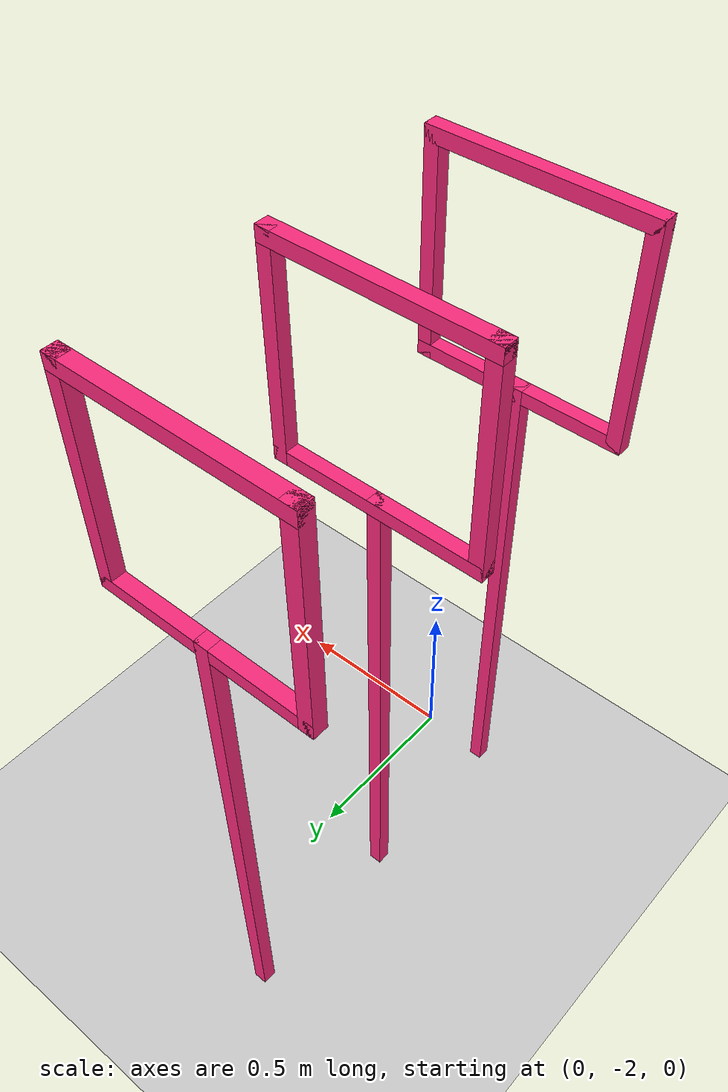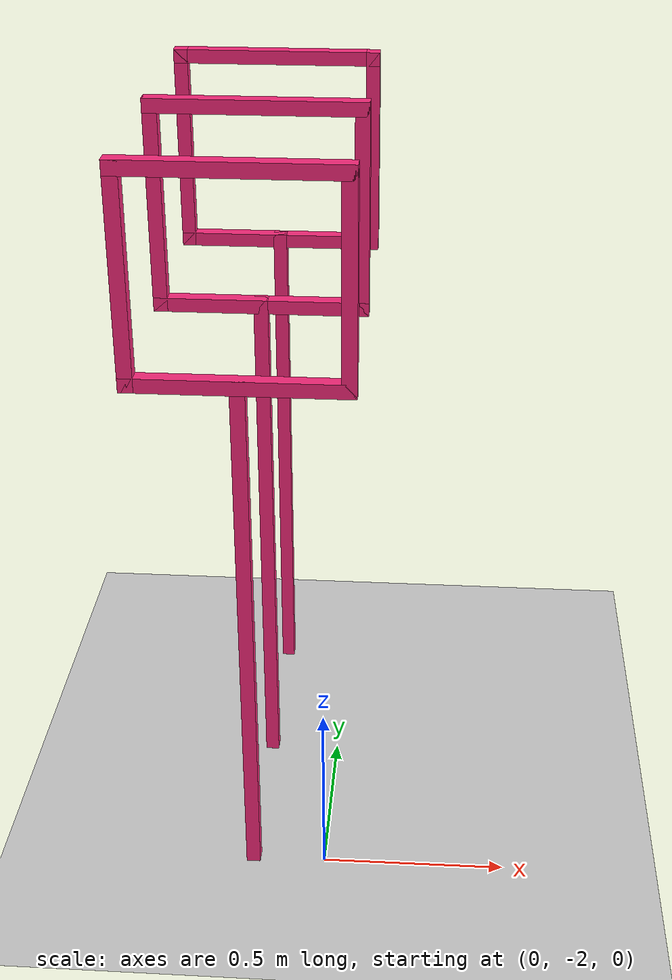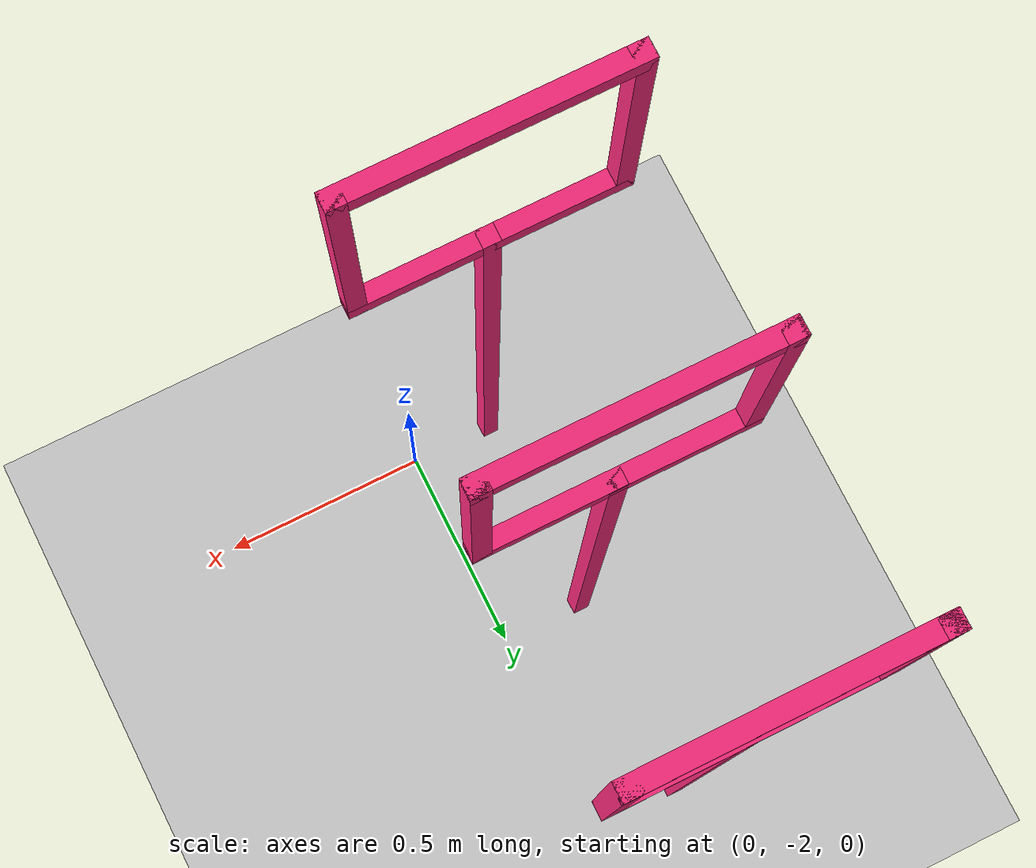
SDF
<sdf version="1.7">
 <world name="default">
  <model name="ground_plane">
   <static>1</static>
   <link name="link">
    <collision name="collision">
     <geometry><plane><normal>0 0 1</normal><size>100 100</size></plane></geometry>
     <surface><friction><ode><mu>100</mu><mu2>50</mu2></ode></friction></surface>
    </collision>
    <visual name="visual">
     <cast_shadows>0</cast_shadows>
     <geometry><plane><normal>0 0 1</normal><size>100 100</size></plane></geometry>
     <material>
      <script><uri>file://media/materials/scripts/gazebo.material</uri><name>Gazebo/Grey</name></script>
     </material>
    </visual>
   </link>
  </model>
  <model name="small_gate_9">
   <link name="rod">
    <pose>0 0 0.75 0 -0 0</pose>
    <inertial>
     <mass>1</mass>
     <inertia>
      <ixx>0.166667</ixx>
      <ixy>0</ixy>
      <ixz>0</ixz>
      <iyy>0.166667</iyy>
      <iyz>0</iyz>
      <izz>0.166667</izz>
     </inertia>
    </inertial>
    <visual name="visual">
     <geometry><box><size>0.0381 0.0381 1.5</size></box></geometry>
     <material>
      <shader type="vertex"><normal_map>__default__</normal_map></shader>
      <ambient>0.978 0.164 0.484 1</ambient>
      <diffuse>0.978 0.164 0.484 1</diffuse>
      <specular>0.01 0.01 0.01 1</specular>
      <emissive>0 0 0 1</emissive>
     </material>
    </visual>
    <collision name="collision">
     <geometry><box><size>0.0381 0.0381 1.5</size></box></geometry>
     <surface>
      <friction>
       <ode><mu>1</mu><mu2>1</mu2><fdir1>0 0 0</fdir1><slip1>0</slip1><slip2>0</slip2></ode>
       <torsional>
        <coefficient>1</coefficient>
        <patch_radius>0</patch_radius>
        <surface_radius>0</surface_radius>
        <use_patch_radius>1</use_patch_radius>
        <ode><slip>0</slip></ode>
       </torsional>
      </friction>
      <bounce><restitution_coefficient>0</restitution_coefficient><threshold>1e+06</threshold></bounce>
      <contact>
       <collide_without_contact>0</collide_without_contact>
       <collide_without_contact_bitmask>1</collide_without_contact_bitmask>
       <collide_bitmask>1</collide_bitmask>
       <ode>
        <soft_cfm>0</soft_cfm>
        <soft_erp>0.2</soft_erp>
        <kp>1e+13</kp>
        <kd>1</kd>
        <max_vel>0.01</max_vel>
        <min_depth>0</min_depth>
       </ode>
       <bullet>
        <split_impulse>1</split_impulse>
        <split_impulse_penetration_threshold>-0.01</split_impulse_penetration_threshold>
        <soft_cfm>0</soft_cfm>
        <soft_erp>0.2</soft_erp>
        <kp>1e+13</kp>
        <kd>1</kd>
       </bullet>
      </contact>
     </surface>
    </collision>
   </link>
   <link name="top_edge">
    <pose>0 0 2.01905 0 -0 0</pose>
    <inertial>
     <mass>1</mass>
     <inertia>
      <ixx>0.166667</ixx>
      <ixy>0</ixy>
      <ixz>0</ixz>
      <iyy>0.166667</iyy>
      <iyz>0</iyz>
      <izz>0.166667</izz>
     </inertia>
    </inertial>
    <visual name="visual">
     <geometry><box><size>0.5762 0.0381 0.0381</size></box></geometry>
     <material>
      <shader type="vertex"><normal_map>__default__</normal_map></shader>
      <ambient>0.978 0.164 0.484 1</ambient>
      <diffuse>0.978 0.164 0.484 1</diffuse>
      <specular>0.01 0.01 0.01 1</specular>
      <emissive>0 0 0 1</emissive>
     </material>
    </visual>
    <collision name="collision">
     <geometry><box><size>0.5762 0.0381 0.0381</size></box></geometry>
     <surface>
      <friction>
       <ode><mu>1</mu><mu2>1</mu2><fdir1>0 0 0</fdir1><slip1>0</slip1><slip2>0</slip2></ode>
       <torsional>
        <coefficient>1</coefficient>
        <patch_radius>0</patch_radius>
        <surface_radius>0</surface_radius>
        <use_patch_radius>1</use_patch_radius>
        <ode><slip>0</slip></ode>
       </torsional>
      </friction>
      <bounce><restitution_coefficient>0</restitution_coefficient><threshold>1e+06</threshold></bounce>
      <contact>
       <collide_without_contact>0</collide_without_contact>
       <collide_without_contact_bitmask>1</collide_without_contact_bitmask>
       <collide_bitmask>1</collide_bitmask>
       <ode>
        <soft_cfm>0</soft_cfm>
        <soft_erp>0.2</soft_erp>
        <kp>1e+13</kp>
        <kd>1</kd>
        <max_vel>0.01</max_vel>
        <min_depth>0</min_depth>
       </ode>
       <bullet>
        <split_impulse>1</split_impulse>
        <split_impulse_penetration_threshold>-0.01</split_impulse_penetration_threshold>
        <soft_cfm>0</soft_cfm>
        <soft_erp>0.2</soft_erp>
        <kp>1e+13</kp>
        <kd>1</kd>
       </bullet>
      </contact>
     </surface>
    </collision>
   </link>
   <link name="bottom_edge">
    <pose>0 0 1.48095 0 -0 0</pose>
    <inertial>
     <mass>1</mass>
     <inertia>
      <ixx>0.166667</ixx>
      <ixy>0</ixy>
      <ixz>0</ixz>
      <iyy>0.166667</iyy>
      <iyz>0</iyz>
      <izz>0.166667</izz>
     </inertia>
    </inertial>
    <visual name="visual">
     <geometry><box><size>0.5762 0.0381 0.0381</size></box></geometry>
     <material>
      <shader type="vertex"><normal_map>__default__</normal_map></shader>
      <ambient>0.978 0.164 0.484 1</ambient>
      <diffuse>0.978 0.164 0.484 1</diffuse>
      <specular>0.01 0.01 0.01 1</specular>
      <emissive>0 0 0 1</emissive>
     </material>
    </visual>
    <collision name="collision">
     <geometry><box><size>0.5762 0.0381 0.0381</size></box></geometry>
     <surface>
      <friction>
       <ode><mu>1</mu><mu2>1</mu2><fdir1>0 0 0</fdir1><slip1>0</slip1><slip2>0</slip2></ode>
       <torsional>
        <coefficient>1</coefficient>
        <patch_radius>0</patch_radius>
        <surface_radius>0</surface_radius>
        <use_patch_radius>1</use_patch_radius>
        <ode><slip>0</slip></ode>
       </torsional>
      </friction>
      <bounce><restitution_coefficient>0</restitution_coefficient><threshold>1e+06</threshold></bounce>
      <contact>
       <collide_without_contact>0</collide_without_contact>
       <collide_without_contact_bitmask>1</collide_without_contact_bitmask>
       <collide_bitmask>1</collide_bitmask>
       <ode>
        <soft_cfm>0</soft_cfm>
        <soft_erp>0.2</soft_erp>
        <kp>1e+13</kp>
        <kd>1</kd>
        <max_vel>0.01</max_vel>
        <min_depth>0</min_depth>
       </ode>
       <bullet>
        <split_impulse>1</split_impulse>
        <split_impulse_penetration_threshold>-0.01</split_impulse_penetration_threshold>
        <soft_cfm>0</soft_cfm>
        <soft_erp>0.2</soft_erp>
        <kp>1e+13</kp>
        <kd>1</kd>
       </bullet>
      </contact>
     </surface>
    </collision>
   </link>
   <link name="left_edge">
    <pose>-0.26905 0 1.75 0 -0 0</pose>
    <inertial>
     <mass>1</mass>
     <inertia>
      <ixx>0.166667</ixx>
      <ixy>0</ixy>
      <ixz>0</ixz>
      <iyy>0.166667</iyy>
      <iyz>0</iyz>
      <izz>0.166667</izz>
     </inertia>
    </inertial>
    <visual name="visual">
     <geometry><box><size>0.0381 0.0381 0.5762</size></box></geometry>
     <material>
      <shader type="vertex"><normal_map>__default__</normal_map></shader>
      <ambient>0.978 0.164 0.484 1</ambient>
      <diffuse>0.978 0.164 0.484 1</diffuse>
      <specular>0.01 0.01 0.01 1</specular>
      <emissive>0 0 0 1</emissive>
     </material>
    </visual>
    <collision name="collision">
     <geometry><box><size>0.0381 0.0381 0.5762</size></box></geometry>
     <surface>
      <friction>
       <ode><mu>1</mu><mu2>1</mu2><fdir1>0 0 0</fdir1><slip1>0</slip1><slip2>0</slip2></ode>
       <torsional>
        <coefficient>1</coefficient>
        <patch_radius>0</patch_radius>
        <surface_radius>0</surface_radius>
        <use_patch_radius>1</use_patch_radius>
        <ode><slip>0</slip></ode>
       </torsional>
      </friction>
      <bounce><restitution_coefficient>0</restitution_coefficient><threshold>1e+06</threshold></bounce>
      <contact>
       <collide_without_contact>0</collide_without_contact>
       <collide_without_contact_bitmask>1</collide_without_contact_bitmask>
       <collide_bitmask>1</collide_bitmask>
       <ode>
        <soft_cfm>0</soft_cfm>
        <soft_erp>0.2</soft_erp>
        <kp>1e+13</kp>
        <kd>1</kd>
        <max_vel>0.01</max_vel>
        <min_depth>0</min_depth>
       </ode>
       <bullet>
        <split_impulse>1</split_impulse>
        <split_impulse_penetration_threshold>-0.01</split_impulse_penetration_threshold>
        <soft_cfm>0</soft_cfm>
        <soft_erp>0.2</soft_erp>
        <kp>1e+13</kp>
        <kd>1</kd>
       </bullet>
      </contact>
     </surface>
    </collision>
   </link>
   <link name="right_edge">
    <pose>0.26905 0 1.75 0 -0 0</pose>
    <inertial>
     <mass>1</mass>
     <inertia>
      <ixx>0.166667</ixx>
      <ixy>0</ixy>
      <ixz>0</ixz>
      <iyy>0.166667</iyy>
      <iyz>0</iyz>
      <izz>0.166667</izz>
     </inertia>
    </inertial>
    <visual name="visual">
     <geometry><box><size>0.0381 0.0381 0.5762</size></box></geometry>
     <material>
      <shader type="vertex"><normal_map>__default__</normal_map></shader>
      <ambient>0.978 0.164 0.484 1</ambient>
      <diffuse>0.978 0.164 0.484 1</diffuse>
      <specular>0.01 0.01 0.01 1</specular>
      <emissive>0 0 0 1</emissive>
     </material>
    </visual>
    <collision name="collision">
     <geometry><box><size>0.0381 0.0381 0.5762</size></box></geometry>
     <surface>
      <friction>
       <ode><mu>1</mu><mu2>1</mu2><fdir1>0 0 0</fdir1><slip1>0</slip1><slip2>0</slip2></ode>
       <torsional>
        <coefficient>1</coefficient>
        <patch_radius>0</patch_radius>
        <surface_radius>0</surface_radius>
        <use_patch_radius>1</use_patch_radius>
        <ode><slip>0</slip></ode>
       </torsional>
      </friction>
      <bounce><restitution_coefficient>0</restitution_coefficient><threshold>1e+06</threshold></bounce>
      <contact>
       <collide_without_contact>0</collide_without_contact>
       <collide_without_contact_bitmask>1</collide_without_contact_bitmask>
       <collide_bitmask>1</collide_bitmask>
       <ode>
        <soft_cfm>0</soft_cfm>
        <soft_erp>0.2</soft_erp>
        <kp>1e+13</kp>
        <kd>1</kd>
        <max_vel>0.01</max_vel>
        <min_depth>0</min_depth>
       </ode>
       <bullet>
        <split_impulse>1</split_impulse>
        <split_impulse_penetration_threshold>-0.01</split_impulse_penetration_threshold>
        <soft_cfm>0</soft_cfm>
        <soft_erp>0.2</soft_erp>
        <kp>1e+13</kp>
        <kd>1</kd>
       </bullet>
      </contact>
     </surface>
    </collision>
   </link>
   <static>1</static>
   <pose>-0.2 -2 0 0 -0 0</pose>
  </model>
  <model name="small_gate_10">
   <link name="rod">
    <pose>0 0 0.75 0 -0 0</pose>
    <inertial>
     <mass>1</mass>
     <inertia>
      <ixx>0.166667</ixx>
      <ixy>0</ixy>
      <ixz>0</ixz>
      <iyy>0.166667</iyy>
      <iyz>0</iyz>
      <izz>0.166667</izz>
     </inertia>
    </inertial>
    <visual name="visual">
     <geometry><box><size>0.0381 0.0381 1.5</size></box></geometry>
     <material>
      <shader type="vertex"><normal_map>__default__</normal_map></shader>
      <ambient>0.978 0.164 0.484 1</ambient>
      <diffuse>0.978 0.164 0.484 1</diffuse>
      <specular>0.01 0.01 0.01 1</specular>
      <emissive>0 0 0 1</emissive>
     </material>
    </visual>
    <collision name="collision">
     <geometry><box><size>0.0381 0.0381 1.5</size></box></geometry>
     <surface>
      <friction>
       <ode><mu>1</mu><mu2>1</mu2><fdir1>0 0 0</fdir1><slip1>0</slip1><slip2>0</slip2></ode>
       <torsional>
        <coefficient>1</coefficient>
        <patch_radius>0</patch_radius>
        <surface_radius>0</surface_radius>
        <use_patch_radius>1</use_patch_radius>
        <ode><slip>0</slip></ode>
       </torsional>
      </friction>
      <bounce><restitution_coefficient>0</restitution_coefficient><threshold>1e+06</threshold></bounce>
      <contact>
       <collide_without_contact>0</collide_without_contact>
       <collide_without_contact_bitmask>1</collide_without_contact_bitmask>
       <collide_bitmask>1</collide_bitmask>
       <ode>
        <soft_cfm>0</soft_cfm>
        <soft_erp>0.2</soft_erp>
        <kp>1e+13</kp>
        <kd>1</kd>
        <max_vel>0.01</max_vel>
        <min_depth>0</min_depth>
       </ode>
       <bullet>
        <split_impulse>1</split_impulse>
        <split_impulse_penetration_threshold>-0.01</split_impulse_penetration_threshold>
        <soft_cfm>0</soft_cfm>
        <soft_erp>0.2</soft_erp>
        <kp>1e+13</kp>
        <kd>1</kd>
       </bullet>
      </contact>
     </surface>
    </collision>
   </link>
   <link name="top_edge">
    <pose>0 0 2.01905 0 -0 0</pose>
    <inertial>
     <mass>1</mass>
     <inertia>
      <ixx>0.166667</ixx>
      <ixy>0</ixy>
      <ixz>0</ixz>
      <iyy>0.166667</iyy>
      <iyz>0</iyz>
      <izz>0.166667</izz>
     </inertia>
    </inertial>
    <visual name="visual">
     <geometry><box><size>0.5762 0.0381 0.0381</size></box></geometry>
     <material>
      <shader type="vertex"><normal_map>__default__</normal_map></shader>
      <ambient>0.978 0.164 0.484 1</ambient>
      <diffuse>0.978 0.164 0.484 1</diffuse>
      <specular>0.01 0.01 0.01 1</specular>
      <emissive>0 0 0 1</emissive>
     </material>
    </visual>
    <collision name="collision">
     <geometry><box><size>0.5762 0.0381 0.0381</size></box></geometry>
     <surface>
      <friction>
       <ode><mu>1</mu><mu2>1</mu2><fdir1>0 0 0</fdir1><slip1>0</slip1><slip2>0</slip2></ode>
       <torsional>
        <coefficient>1</coefficient>
        <patch_radius>0</patch_radius>
        <surface_radius>0</surface_radius>
        <use_patch_radius>1</use_patch_radius>
        <ode><slip>0</slip></ode>
       </torsional>
      </friction>
      <bounce><restitution_coefficient>0</restitution_coefficient><threshold>1e+06</threshold></bounce>
      <contact>
       <collide_without_contact>0</collide_without_contact>
       <collide_without_contact_bitmask>1</collide_without_contact_bitmask>
       <collide_bitmask>1</collide_bitmask>
       <ode>
        <soft_cfm>0</soft_cfm>
        <soft_erp>0.2</soft_erp>
        <kp>1e+13</kp>
        <kd>1</kd>
        <max_vel>0.01</max_vel>
        <min_depth>0</min_depth>
       </ode>
       <bullet>
        <split_impulse>1</split_impulse>
        <split_impulse_penetration_threshold>-0.01</split_impulse_penetration_threshold>
        <soft_cfm>0</soft_cfm>
        <soft_erp>0.2</soft_erp>
        <kp>1e+13</kp>
        <kd>1</kd>
       </bullet>
      </contact>
     </surface>
    </collision>
   </link>
   <link name="bottom_edge">
    <pose>0 0 1.48095 0 -0 0</pose>
    <inertial>
     <mass>1</mass>
     <inertia>
      <ixx>0.166667</ixx>
      <ixy>0</ixy>
      <ixz>0</ixz>
      <iyy>0.166667</iyy>
      <iyz>0</iyz>
      <izz>0.166667</izz>
     </inertia>
    </inertial>
    <visual name="visual">
     <geometry><box><size>0.5762 0.0381 0.0381</size></box></geometry>
     <material>
      <shader type="vertex"><normal_map>__default__</normal_map></shader>
      <ambient>0.978 0.164 0.484 1</ambient>
      <diffuse>0.978 0.164 0.484 1</diffuse>
      <specular>0.01 0.01 0.01 1</specular>
      <emissive>0 0 0 1</emissive>
     </material>
    </visual>
    <collision name="collision">
     <geometry><box><size>0.5762 0.0381 0.0381</size></box></geometry>
     <surface>
      <friction>
       <ode><mu>1</mu><mu2>1</mu2><fdir1>0 0 0</fdir1><slip1>0</slip1><slip2>0</slip2></ode>
       <torsional>
        <coefficient>1</coefficient>
        <patch_radius>0</patch_radius>
        <surface_radius>0</surface_radius>
        <use_patch_radius>1</use_patch_radius>
        <ode><slip>0</slip></ode>
       </torsional>
      </friction>
      <bounce><restitution_coefficient>0</restitution_coefficient><threshold>1e+06</threshold></bounce>
      <contact>
       <collide_without_contact>0</collide_without_contact>
       <collide_without_contact_bitmask>1</collide_without_contact_bitmask>
       <collide_bitmask>1</collide_bitmask>
       <ode>
        <soft_cfm>0</soft_cfm>
        <soft_erp>0.2</soft_erp>
        <kp>1e+13</kp>
        <kd>1</kd>
        <max_vel>0.01</max_vel>
        <min_depth>0</min_depth>
       </ode>
       <bullet>
        <split_impulse>1</split_impulse>
        <split_impulse_penetration_threshold>-0.01</split_impulse_penetration_threshold>
        <soft_cfm>0</soft_cfm>
        <soft_erp>0.2</soft_erp>
        <kp>1e+13</kp>
        <kd>1</kd>
       </bullet>
      </contact>
     </surface>
    </collision>
   </link>
   <link name="left_edge">
    <pose>-0.26905 0 1.75 0 -0 0</pose>
    <inertial>
     <mass>1</mass>
     <inertia>
      <ixx>0.166667</ixx>
      <ixy>0</ixy>
      <ixz>0</ixz>
      <iyy>0.166667</iyy>
      <iyz>0</iyz>
      <izz>0.166667</izz>
     </inertia>
    </inertial>
    <visual name="visual">
     <geometry><box><size>0.0381 0.0381 0.5762</size></box></geometry>
     <material>
      <shader type="vertex"><normal_map>__default__</normal_map></shader>
      <ambient>0.978 0.164 0.484 1</ambient>
      <diffuse>0.978 0.164 0.484 1</diffuse>
      <specular>0.01 0.01 0.01 1</specular>
      <emissive>0 0 0 1</emissive>
     </material>
    </visual>
    <collision name="collision">
     <geometry><box><size>0.0381 0.0381 0.5762</size></box></geometry>
     <surface>
      <friction>
       <ode><mu>1</mu><mu2>1</mu2><fdir1>0 0 0</fdir1><slip1>0</slip1><slip2>0</slip2></ode>
       <torsional>
        <coefficient>1</coefficient>
        <patch_radius>0</patch_radius>
        <surface_radius>0</surface_radius>
        <use_patch_radius>1</use_patch_radius>
        <ode><slip>0</slip></ode>
       </torsional>
      </friction>
      <bounce><restitution_coefficient>0</restitution_coefficient><threshold>1e+06</threshold></bounce>
      <contact>
       <collide_without_contact>0</collide_without_contact>
       <collide_without_contact_bitmask>1</collide_without_contact_bitmask>
       <collide_bitmask>1</collide_bitmask>
       <ode>
        <soft_cfm>0</soft_cfm>
        <soft_erp>0.2</soft_erp>
        <kp>1e+13</kp>
        <kd>1</kd>
        <max_vel>0.01</max_vel>
        <min_depth>0</min_depth>
       </ode>
       <bullet>
        <split_impulse>1</split_impulse>
        <split_impulse_penetration_threshold>-0.01</split_impulse_penetration_threshold>
        <soft_cfm>0</soft_cfm>
        <soft_erp>0.2</soft_erp>
        <kp>1e+13</kp>
        <kd>1</kd>
       </bullet>
      </contact>
     </surface>
    </collision>
   </link>
   <link name="right_edge">
    <pose>0.26905 0 1.75 0 -0 0</pose>
    <inertial>
     <mass>1</mass>
     <inertia>
      <ixx>0.166667</ixx>
      <ixy>0</ixy>
      <ixz>0</ixz>
      <iyy>0.166667</iyy>
      <iyz>0</iyz>
      <izz>0.166667</izz>
     </inertia>
    </inertial>
    <visual name="visual">
     <geometry><box><size>0.0381 0.0381 0.5762</size></box></geometry>
     <material>
      <shader type="vertex"><normal_map>__default__</normal_map></shader>
      <ambient>0.978 0.164 0.484 1</ambient>
      <diffuse>0.978 0.164 0.484 1</diffuse>
      <specular>0.01 0.01 0.01 1</specular>
      <emissive>0 0 0 1</emissive>
     </material>
    </visual>
    <collision name="collision">
     <geometry><box><size>0.0381 0.0381 0.5762</size></box></geometry>
     <surface>
      <friction>
       <ode><mu>1</mu><mu2>1</mu2><fdir1>0 0 0</fdir1><slip1>0</slip1><slip2>0</slip2></ode>
       <torsional>
        <coefficient>1</coefficient>
        <patch_radius>0</patch_radius>
        <surface_radius>0</surface_radius>
        <use_patch_radius>1</use_patch_radius>
        <ode><slip>0</slip></ode>
       </torsional>
      </friction>
      <bounce><restitution_coefficient>0</restitution_coefficient><threshold>1e+06</threshold></bounce>
      <contact>
       <collide_without_contact>0</collide_without_contact>
       <collide_without_contact_bitmask>1</collide_without_contact_bitmask>
       <collide_bitmask>1</collide_bitmask>
       <ode>
        <soft_cfm>0</soft_cfm>
        <soft_erp>0.2</soft_erp>
        <kp>1e+13</kp>
        <kd>1</kd>
        <max_vel>0.01</max_vel>
        <min_depth>0</min_depth>
       </ode>
       <bullet>
        <split_impulse>1</split_impulse>
        <split_impulse_penetration_threshold>-0.01</split_impulse_penetration_threshold>
        <soft_cfm>0</soft_cfm>
        <soft_erp>0.2</soft_erp>
        <kp>1e+13</kp>
        <kd>1</kd>
       </bullet>
      </contact>
     </surface>
    </collision>
   </link>
   <static>1</static>
   <pose>-0.2 -1.5 0 0 -0 0</pose>
  </model>
  <model name="small_gate_11">
   <link name="rod">
    <pose>0 0 0.75 0 -0 0</pose>
    <inertial>
     <mass>1</mass>
     <inertia>
      <ixx>0.166667</ixx>
      <ixy>0</ixy>
      <ixz>0</ixz>
      <iyy>0.166667</iyy>
      <iyz>0</iyz>
      <izz>0.166667</izz>
     </inertia>
    </inertial>
    <visual name="visual">
     <geometry><box><size>0.0381 0.0381 1.5</size></box></geometry>
     <material>
      <shader type="vertex"><normal_map>__default__</normal_map></shader>
      <ambient>0.978 0.164 0.484 1</ambient>
      <diffuse>0.978 0.164 0.484 1</diffuse>
      <specular>0.01 0.01 0.01 1</specular>
      <emissive>0 0 0 1</emissive>
     </material>
    </visual>
    <collision name="collision">
     <geometry><box><size>0.0381 0.0381 1.5</size></box></geometry>
     <surface>
      <friction>
       <ode><mu>1</mu><mu2>1</mu2><fdir1>0 0 0</fdir1><slip1>0</slip1><slip2>0</slip2></ode>
       <torsional>
        <coefficient>1</coefficient>
        <patch_radius>0</patch_radius>
        <surface_radius>0</surface_radius>
        <use_patch_radius>1</use_patch_radius>
        <ode><slip>0</slip></ode>
       </torsional>
      </friction>
      <bounce><restitution_coefficient>0</restitution_coefficient><threshold>1e+06</threshold></bounce>
      <contact>
       <collide_without_contact>0</collide_without_contact>
       <collide_without_contact_bitmask>1</collide_without_contact_bitmask>
       <collide_bitmask>1</collide_bitmask>
       <ode>
        <soft_cfm>0</soft_cfm>
        <soft_erp>0.2</soft_erp>
        <kp>1e+13</kp>
        <kd>1</kd>
        <max_vel>0.01</max_vel>
        <min_depth>0</min_depth>
       </ode>
       <bullet>
        <split_impulse>1</split_impulse>
        <split_impulse_penetration_threshold>-0.01</split_impulse_penetration_threshold>
        <soft_cfm>0</soft_cfm>
        <soft_erp>0.2</soft_erp>
        <kp>1e+13</kp>
        <kd>1</kd>
       </bullet>
      </contact>
     </surface>
    </collision>
   </link>
   <link name="top_edge">
    <pose>0 0 2.01905 0 -0 0</pose>
    <inertial>
     <mass>1</mass>
     <inertia>
      <ixx>0.166667</ixx>
      <ixy>0</ixy>
      <ixz>0</ixz>
      <iyy>0.166667</iyy>
      <iyz>0</iyz>
      <izz>0.166667</izz>
     </inertia>
    </inertial>
    <visual name="visual">
     <geometry><box><size>0.5762 0.0381 0.0381</size></box></geometry>
     <material>
      <shader type="vertex"><normal_map>__default__</normal_map></shader>
      <ambient>0.978 0.164 0.484 1</ambient>
      <diffuse>0.978 0.164 0.484 1</diffuse>
      <specular>0.01 0.01 0.01 1</specular>
      <emissive>0 0 0 1</emissive>
     </material>
    </visual>
    <collision name="collision">
     <geometry><box><size>0.5762 0.0381 0.0381</size></box></geometry>
     <surface>
      <friction>
       <ode><mu>1</mu><mu2>1</mu2><fdir1>0 0 0</fdir1><slip1>0</slip1><slip2>0</slip2></ode>
       <torsional>
        <coefficient>1</coefficient>
        <patch_radius>0</patch_radius>
        <surface_radius>0</surface_radius>
        <use_patch_radius>1</use_patch_radius>
        <ode><slip>0</slip></ode>
       </torsional>
      </friction>
      <bounce><restitution_coefficient>0</restitution_coefficient><threshold>1e+06</threshold></bounce>
      <contact>
       <collide_without_contact>0</collide_without_contact>
       <collide_without_contact_bitmask>1</collide_without_contact_bitmask>
       <collide_bitmask>1</collide_bitmask>
       <ode>
        <soft_cfm>0</soft_cfm>
        <soft_erp>0.2</soft_erp>
        <kp>1e+13</kp>
        <kd>1</kd>
        <max_vel>0.01</max_vel>
        <min_depth>0</min_depth>
       </ode>
       <bullet>
        <split_impulse>1</split_impulse>
        <split_impulse_penetration_threshold>-0.01</split_impulse_penetration_threshold>
        <soft_cfm>0</soft_cfm>
        <soft_erp>0.2</soft_erp>
        <kp>1e+13</kp>
        <kd>1</kd>
       </bullet>
      </contact>
     </surface>
    </collision>
   </link>
   <link name="bottom_edge">
    <pose>0 0 1.48095 0 -0 0</pose>
    <inertial>
     <mass>1</mass>
     <inertia>
      <ixx>0.166667</ixx>
      <ixy>0</ixy>
      <ixz>0</ixz>
      <iyy>0.166667</iyy>
      <iyz>0</iyz>
      <izz>0.166667</izz>
     </inertia>
    </inertial>
    <visual name="visual">
     <geometry><box><size>0.5762 0.0381 0.0381</size></box></geometry>
     <material>
      <shader type="vertex"><normal_map>__default__</normal_map></shader>
      <ambient>0.978 0.164 0.484 1</ambient>
      <diffuse>0.978 0.164 0.484 1</diffuse>
      <specular>0.01 0.01 0.01 1</specular>
      <emissive>0 0 0 1</emissive>
     </material>
    </visual>
    <collision name="collision">
     <geometry><box><size>0.5762 0.0381 0.0381</size></box></geometry>
     <surface>
      <friction>
       <ode><mu>1</mu><mu2>1</mu2><fdir1>0 0 0</fdir1><slip1>0</slip1><slip2>0</slip2></ode>
       <torsional>
        <coefficient>1</coefficient>
        <patch_radius>0</patch_radius>
        <surface_radius>0</surface_radius>
        <use_patch_radius>1</use_patch_radius>
        <ode><slip>0</slip></ode>
       </torsional>
      </friction>
      <bounce><restitution_coefficient>0</restitution_coefficient><threshold>1e+06</threshold></bounce>
      <contact>
       <collide_without_contact>0</collide_without_contact>
       <collide_without_contact_bitmask>1</collide_without_contact_bitmask>
       <collide_bitmask>1</collide_bitmask>
       <ode>
        <soft_cfm>0</soft_cfm>
        <soft_erp>0.2</soft_erp>
        <kp>1e+13</kp>
        <kd>1</kd>
        <max_vel>0.01</max_vel>
        <min_depth>0</min_depth>
       </ode>
       <bullet>
        <split_impulse>1</split_impulse>
        <split_impulse_penetration_threshold>-0.01</split_impulse_penetration_threshold>
        <soft_cfm>0</soft_cfm>
        <soft_erp>0.2</soft_erp>
        <kp>1e+13</kp>
        <kd>1</kd>
       </bullet>
      </contact>
     </surface>
    </collision>
   </link>
   <link name="left_edge">
    <pose>-0.26905 0 1.75 0 -0 0</pose>
    <inertial>
     <mass>1</mass>
     <inertia>
      <ixx>0.166667</ixx>
      <ixy>0</ixy>
      <ixz>0</ixz>
      <iyy>0.166667</iyy>
      <iyz>0</iyz>
      <izz>0.166667</izz>
     </inertia>
    </inertial>
    <visual name="visual">
     <geometry><box><size>0.0381 0.0381 0.5762</size></box></geometry>
     <material>
      <shader type="vertex"><normal_map>__default__</normal_map></shader>
      <ambient>0.978 0.164 0.484 1</ambient>
      <diffuse>0.978 0.164 0.484 1</diffuse>
      <specular>0.01 0.01 0.01 1</specular>
      <emissive>0 0 0 1</emissive>
     </material>
    </visual>
    <collision name="collision">
     <geometry><box><size>0.0381 0.0381 0.5762</size></box></geometry>
     <surface>
      <friction>
       <ode><mu>1</mu><mu2>1</mu2><fdir1>0 0 0</fdir1><slip1>0</slip1><slip2>0</slip2></ode>
       <torsional>
        <coefficient>1</coefficient>
        <patch_radius>0</patch_radius>
        <surface_radius>0</surface_radius>
        <use_patch_radius>1</use_patch_radius>
        <ode><slip>0</slip></ode>
       </torsional>
      </friction>
      <bounce><restitution_coefficient>0</restitution_coefficient><threshold>1e+06</threshold></bounce>
      <contact>
       <collide_without_contact>0</collide_without_contact>
       <collide_without_contact_bitmask>1</collide_without_contact_bitmask>
       <collide_bitmask>1</collide_bitmask>
       <ode>
        <soft_cfm>0</soft_cfm>
        <soft_erp>0.2</soft_erp>
        <kp>1e+13</kp>
        <kd>1</kd>
        <max_vel>0.01</max_vel>
        <min_depth>0</min_depth>
       </ode>
       <bullet>
        <split_impulse>1</split_impulse>
        <split_impulse_penetration_threshold>-0.01</split_impulse_penetration_threshold>
        <soft_cfm>0</soft_cfm>
        <soft_erp>0.2</soft_erp>
        <kp>1e+13</kp>
        <kd>1</kd>
       </bullet>
      </contact>
     </surface>
    </collision>
   </link>
   <link name="right_edge">
    <pose>0.26905 0 1.75 0 -0 0</pose>
    <inertial>
     <mass>1</mass>
     <inertia>
      <ixx>0.166667</ixx>
      <ixy>0</ixy>
      <ixz>0</ixz>
      <iyy>0.166667</iyy>
      <iyz>0</iyz>
      <izz>0.166667</izz>
     </inertia>
    </inertial>
    <visual name="visual">
     <geometry><box><size>0.0381 0.0381 0.5762</size></box></geometry>
     <material>
      <shader type="vertex"><normal_map>__default__</normal_map></shader>
      <ambient>0.978 0.164 0.484 1</ambient>
      <diffuse>0.978 0.164 0.484 1</diffuse>
      <specular>0.01 0.01 0.01 1</specular>
      <emissive>0 0 0 1</emissive>
     </material>
    </visual>
    <collision name="collision">
     <geometry><box><size>0.0381 0.0381 0.5762</size></box></geometry>
     <surface>
      <friction>
       <ode><mu>1</mu><mu2>1</mu2><fdir1>0 0 0</fdir1><slip1>0</slip1><slip2>0</slip2></ode>
       <torsional>
        <coefficient>1</coefficient>
        <patch_radius>0</patch_radius>
        <surface_radius>0</surface_radius>
        <use_patch_radius>1</use_patch_radius>
        <ode><slip>0</slip></ode>
       </torsional>
      </friction>
      <bounce><restitution_coefficient>0</restitution_coefficient><threshold>1e+06</threshold></bounce>
      <contact>
       <collide_without_contact>0</collide_without_contact>
       <collide_without_contact_bitmask>1</collide_without_contact_bitmask>
       <collide_bitmask>1</collide_bitmask>
       <ode>
        <soft_cfm>0</soft_cfm>
        <soft_erp>0.2</soft_erp>
        <kp>1e+13</kp>
        <kd>1</kd>
        <max_vel>0.01</max_vel>
        <min_depth>0</min_depth>
       </ode>
       <bullet>
        <split_impulse>1</split_impulse>
        <split_impulse_penetration_threshold>-0.01</split_impulse_penetration_threshold>
        <soft_cfm>0</soft_cfm>
        <soft_erp>0.2</soft_erp>
        <kp>1e+13</kp>
        <kd>1</kd>
       </bullet>
      </contact>
     </surface>
    </collision>
   </link>
   <static>1</static>
   <pose>-0.2 -1 0 0 -0 0</pose>
  </model>
  <model name="asphalt_plane">
   <static>1</static>
   <link name="link">
    <collision name="collision"><geometry><box><size>200 200 0.1</size></box></geometry></collision>
    <visual name="visual">
     <cast_shadows>0</cast_shadows>
     <transparency>1</transparency>
     <geometry><box><size>200 200 0.1</size></box></geometry>
     <material>
      <script>
       <uri>model://asphalt_plane/materials/scripts</uri>
       <uri>model://asphalt_plane/materials/textures</uri>
       <name>vrc/asphalt</name>
      </script>
     </material>
    </visual>
   </link>
   <pose>3.87759 -1.81498 3.8 0 -0 0</pose>
  </model>
  <model name="asphalt_plane">
   <static>1</static>
   <link name="link">
    <collision name="collision"><geometry><box><size>200 200 0.1</size></box></geometry></collision>
    <visual name="visual">
     <cast_shadows>0</cast_shadows>
     <transparency>1</transparency>
     <geometry><box><size>200 200 0.1</size></box></geometry>
     <material>
      <script>
       <uri>model://asphalt_plane/materials/scripts</uri>
       <uri>model://asphalt_plane/materials/textures</uri>
       <name>vrc/asphalt</name>
      </script>
     </material>
    </visual>
   </link>
   <pose>3.87759 -1.81498 3.8 0 -0 0</pose>
  </model>
 </world>
</sdf>
